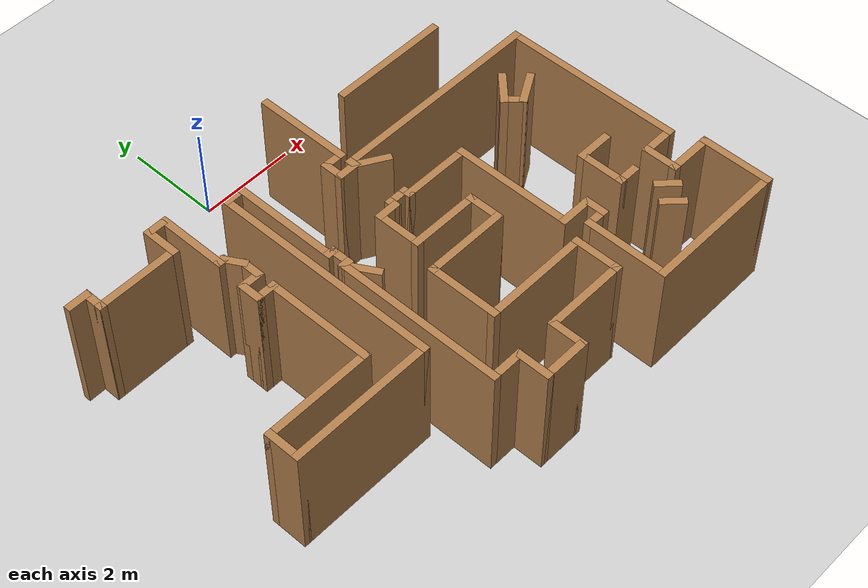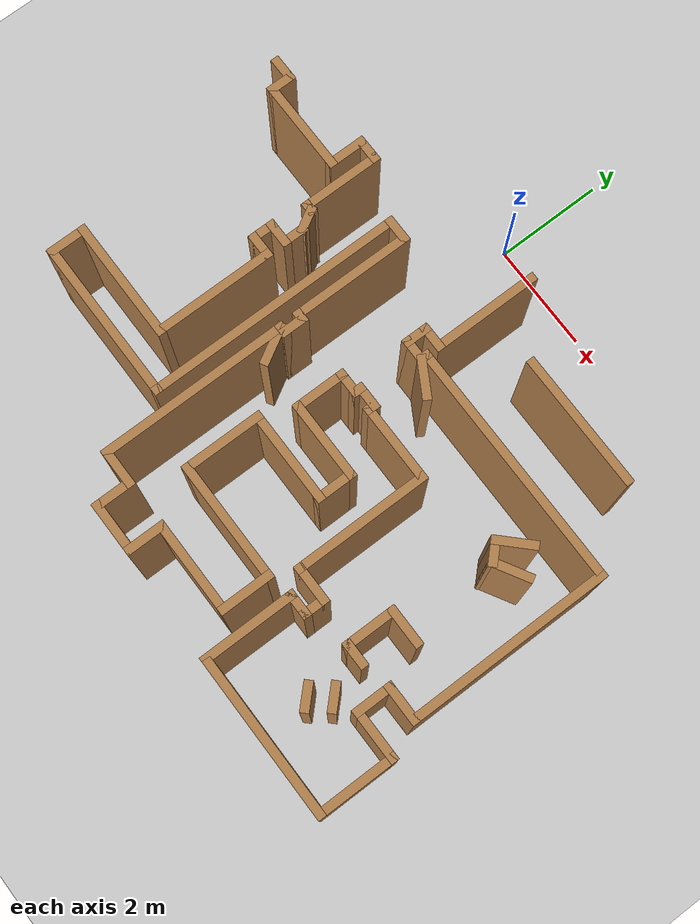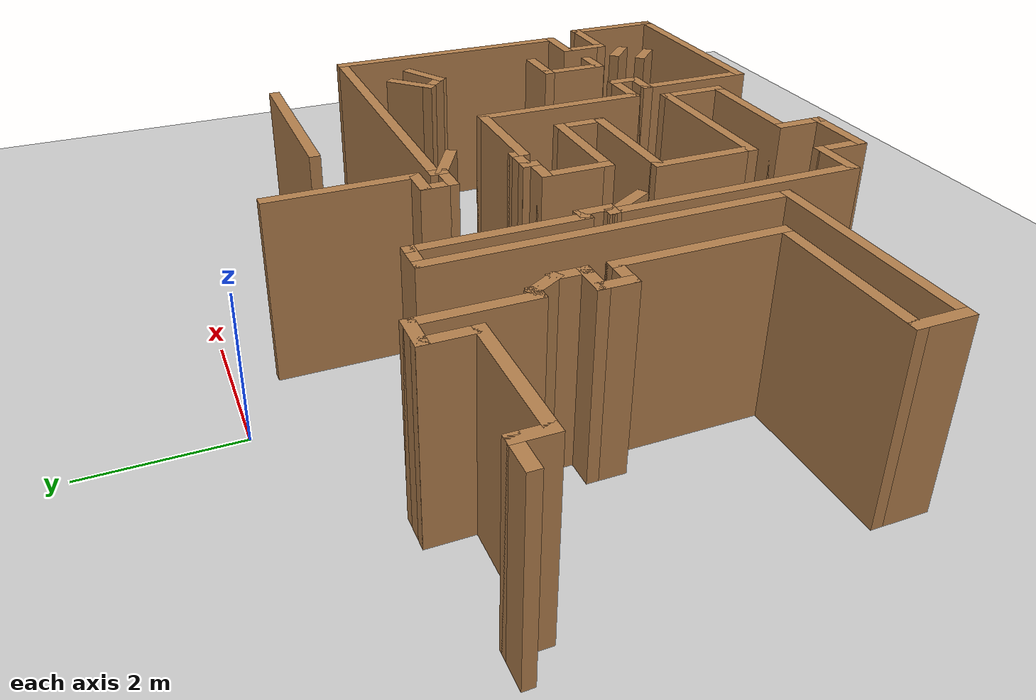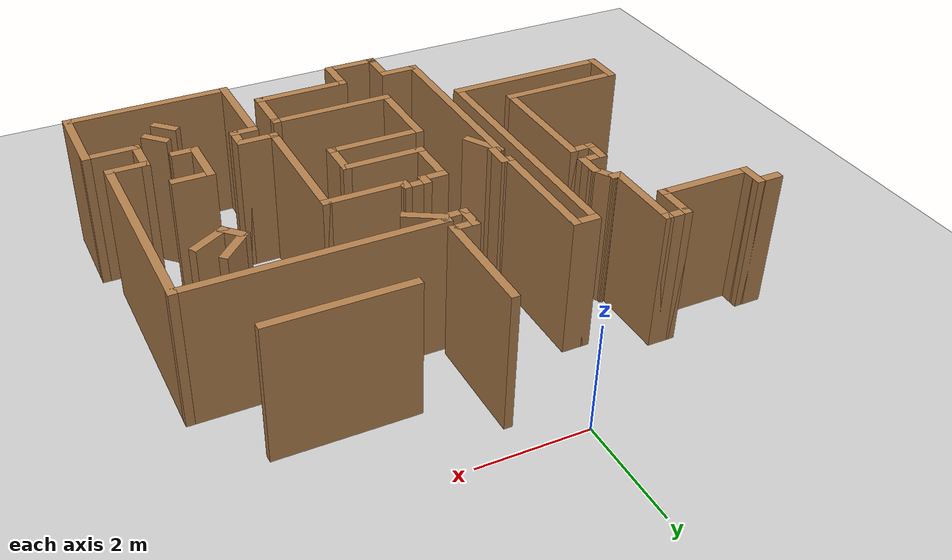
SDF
<sdf version="1.6">
 <world name="default">
  <model name="ground_plane">
   <static>1</static>
   <link name="link">
    <collision name="collision">
     <geometry><plane><normal>0 0 1</normal><size>100 100</size></plane></geometry>
     <surface>
      <contact><collide_bitmask>65535</collide_bitmask></contact>
      <friction><ode><mu>100</mu><mu2>50</mu2></ode></friction>
     </surface>
    </collision>
    <visual name="visual">
     <cast_shadows>0</cast_shadows>
     <geometry><plane><normal>0 0 1</normal><size>100 100</size></plane></geometry>
     <material>
      <script><uri>file://media/materials/scripts/gazebo.material</uri><name>Gazebo/Grey</name></script>
     </material>
    </visual>
   </link>
  </model>
  <model name="map_47">
   <pose>0.712 -1.49736 0 0 -0 0</pose>
   <link name="Wall_102">
    <collision name="Wall_102_Collision">
     <geometry><box><size>4.5 0.15 2.5</size></box></geometry>
     <pose>0 0 1.25 0 -0 0</pose>
    </collision>
    <visual name="Wall_102_Visual">
     <pose>0 0 1.25 0 -0 0</pose>
     <geometry><box><size>4.5 0.15 2.5</size></box></geometry>
     <material>
      <script><uri>file://media/materials/scripts/gazebo.material</uri><name>Gazebo/Wood</name></script>
      <ambient>1 1 1 1</ambient>
     </material>
     <meta><layer>0</layer></meta>
    </visual>
    <pose>2.5875 -1.23787 0 0 -0 3.14159</pose>
   </link>
   <link name="Wall_105">
    <collision name="Wall_105_Collision">
     <geometry><box><size>0.25 0.15 2.5</size></box></geometry>
     <pose>0 0 1.25 0 -0 0</pose>
    </collision>
    <visual name="Wall_105_Visual">
     <pose>0 0 1.25 0 -0 0</pose>
     <geometry><box><size>0.25 0.15 2.5</size></box></geometry>
     <material>
      <script><uri>file://media/materials/scripts/gazebo.material</uri><name>Gazebo/Wood</name></script>
      <ambient>1 1 1 1</ambient>
     </material>
     <meta><layer>0</layer></meta>
    </visual>
    <pose>0.4125 -1.28787 0 0 -0 -1.5708</pose>
   </link>
   <link name="Wall_106">
    <collision name="Wall_106_Collision">
     <geometry><box><size>0.5 0.15 2.5</size></box></geometry>
     <pose>0 0 1.25 0 -0 0</pose>
    </collision>
    <visual name="Wall_106_Visual">
     <pose>0 0 1.25 0 -0 0</pose>
     <geometry><box><size>0.5 0.15 2.5</size></box></geometry>
     <material>
      <script><uri>file://media/materials/scripts/gazebo.material</uri><name>Gazebo/Wood</name></script>
      <ambient>1 1 1 1</ambient>
     </material>
     <meta><layer>0</layer></meta>
    </visual>
    <pose>0.2375 -1.33787 0 0 -0 3.14159</pose>
   </link>
   <link name="Wall_107">
    <collision name="Wall_107_Collision">
     <geometry><box><size>0.5 0.15 2.5</size></box></geometry>
     <pose>0 0 1.25 0 -0 0</pose>
    </collision>
    <visual name="Wall_107_Visual">
     <pose>0 0 1.25 0 -0 0</pose>
     <geometry><box><size>0.5 0.15 2.5</size></box></geometry>
     <material>
      <script><uri>file://media/materials/scripts/gazebo.material</uri><name>Gazebo/Wood</name></script>
      <ambient>1 1 1 1</ambient>
     </material>
     <meta><layer>0</layer></meta>
    </visual>
    <pose>0.0625 -1.16287 0 0 -0 1.5708</pose>
   </link>
   <link name="Wall_108">
    <collision name="Wall_108_Collision">
     <geometry><box><size>0.5 0.15 2.5</size></box></geometry>
     <pose>0 0 1.25 0 -0 0</pose>
    </collision>
    <visual name="Wall_108_Visual">
     <pose>0 0 1.25 0 -0 0</pose>
     <geometry><box><size>0.5 0.15 2.5</size></box></geometry>
     <material>
      <script><uri>file://media/materials/scripts/gazebo.material</uri><name>Gazebo/Wood</name></script>
      <ambient>1 1 1 1</ambient>
     </material>
     <meta><layer>0</layer></meta>
    </visual>
    <pose>0.2375 -0.987868 0 0 -0 0</pose>
   </link>
   <link name="Wall_109">
    <collision name="Wall_109_Collision">
     <geometry><box><size>2 0.15 2.5</size></box></geometry>
     <pose>0 0 1.25 0 -0 0</pose>
    </collision>
    <visual name="Wall_109_Visual">
     <pose>0 0 1.25 0 -0 0</pose>
     <geometry><box><size>2 0.15 2.5</size></box></geometry>
     <material>
      <script><uri>file://media/materials/scripts/gazebo.material</uri><name>Gazebo/Wood</name></script>
      <ambient>1 1 1 1</ambient>
     </material>
     <meta><layer>0</layer></meta>
    </visual>
    <pose>0.4125 -0.062868 0 0 -0 1.5708</pose>
   </link>
   <link name="Wall_112">
    <collision name="Wall_112_Collision">
     <geometry><box><size>2.5 0.15 2.5</size></box></geometry>
     <pose>0 0 1.25 0 -0 0</pose>
    </collision>
    <visual name="Wall_112_Visual">
     <pose>0 0 1.25 0 -0 0</pose>
     <geometry><box><size>2.5 0.15 2.5</size></box></geometry>
     <material>
      <script><uri>file://media/materials/scripts/gazebo.material</uri><name>Gazebo/Wood</name></script>
      <ambient>1 1 1 1</ambient>
     </material>
     <meta><layer>0</layer></meta>
    </visual>
    <pose>2.6875 0.012132 0 0 -0 0</pose>
   </link>
   <link name="Wall_169">
    <collision name="Wall_169_Collision">
     <geometry><box><size>0.75 0.15 2.5</size></box></geometry>
     <pose>0 0 1.25 0 -0 0</pose>
    </collision>
    <visual name="Wall_169_Visual">
     <pose>0 0 1.25 0 -0 0</pose>
     <geometry><box><size>0.75 0.15 2.5</size></box></geometry>
     <material>
      <script><uri>file://media/materials/scripts/gazebo.material</uri><name>Gazebo/Wood</name></script>
      <ambient>1 1 1 1</ambient>
     </material>
     <meta><layer>0</layer></meta>
    </visual>
    <pose>0.672308 -1.48787 0 0 -0 -0.523599</pose>
   </link>
   <link name="Wall_171">
    <collision name="Wall_171_Collision">
     <geometry><box><size>0.75 0.15 2.5</size></box></geometry>
     <pose>0 0 1.25 0 -0 0</pose>
    </collision>
    <visual name="Wall_171_Visual">
     <pose>0 0 1.25 0 -0 0</pose>
     <geometry><box><size>0.75 0.15 2.5</size></box></geometry>
     <material>
      <script><uri>file://media/materials/scripts/gazebo.material</uri><name>Gazebo/Wood</name></script>
      <ambient>1 1 1 1</ambient>
     </material>
     <meta><layer>0</layer></meta>
    </visual>
    <pose>3.57602 -1.97786 0 0 -0 -2.35619</pose>
   </link>
   <link name="Wall_172">
    <collision name="Wall_172_Collision">
     <geometry><box><size>0.5 0.15 2.5</size></box></geometry>
     <pose>0 0 1.25 0 -0 0</pose>
    </collision>
    <visual name="Wall_172_Visual">
     <pose>0 0 1.25 0 -0 0</pose>
     <geometry><box><size>0.5 0.15 2.5</size></box></geometry>
     <material>
      <script><uri>file://media/materials/scripts/gazebo.material</uri><name>Gazebo/Wood</name></script>
      <ambient>1 1 1 1</ambient>
     </material>
     <meta><layer>0</layer></meta>
    </visual>
    <pose>3.48763 -2.31373 0 0 -0 -0.785398</pose>
   </link>
   <link name="Wall_173">
    <collision name="Wall_173_Collision">
     <geometry><box><size>0.75 0.15 2.5</size></box></geometry>
     <pose>0 0 1.25 0 -0 0</pose>
    </collision>
    <visual name="Wall_173_Visual">
     <pose>0 0 1.25 0 -0 0</pose>
     <geometry><box><size>0.75 0.15 2.5</size></box></geometry>
     <material>
      <script><uri>file://media/materials/scripts/gazebo.material</uri><name>Gazebo/Wood</name></script>
      <ambient>1 1 1 1</ambient>
     </material>
     <meta><layer>0</layer></meta>
    </visual>
    <pose>3.87118 -2.28748 0 0 -0 0.523599</pose>
   </link>
   <link name="Wall_175">
    <collision name="Wall_175_Collision">
     <geometry><box><size>0.75 0.15 2.5</size></box></geometry>
     <pose>0 0 1.25 0 -0 0</pose>
    </collision>
    <visual name="Wall_175_Visual">
     <pose>0 0 1.25 0 -0 0</pose>
     <geometry><box><size>0.75 0.15 2.5</size></box></geometry>
     <material>
      <script><uri>file://media/materials/scripts/gazebo.material</uri><name>Gazebo/Wood</name></script>
      <ambient>1 1 1 1</ambient>
     </material>
     <meta><layer>0</layer></meta>
    </visual>
    <pose>3.58067 -4.10192 0 0 -0 3.14159</pose>
   </link>
   <link name="Wall_176">
    <collision name="Wall_176_Collision">
     <geometry><box><size>1 0.15 2.5</size></box></geometry>
     <pose>0 0 1.25 0 -0 0</pose>
    </collision>
    <visual name="Wall_176_Visual">
     <pose>0 0 1.25 0 -0 0</pose>
     <geometry><box><size>1 0.15 2.5</size></box></geometry>
     <material>
      <script><uri>file://media/materials/scripts/gazebo.material</uri><name>Gazebo/Wood</name></script>
      <ambient>1 1 1 1</ambient>
     </material>
     <meta><layer>0</layer></meta>
    </visual>
    <pose>3.28067 -4.52692 0 0 -0 -1.5708</pose>
   </link>
   <link name="Wall_179">
    <collision name="Wall_179_Collision">
     <geometry><box><size>0.5 0.15 2.5</size></box></geometry>
     <pose>0 0 1.25 0 -0 0</pose>
    </collision>
    <visual name="Wall_179_Visual">
     <pose>0 0 1.25 0 -0 0</pose>
     <geometry><box><size>0.5 0.15 2.5</size></box></geometry>
     <material>
      <script><uri>file://media/materials/scripts/gazebo.material</uri><name>Gazebo/Wood</name></script>
      <ambient>1 1 1 1</ambient>
     </material>
     <meta><layer>0</layer></meta>
    </visual>
    <pose>3.45567 -4.95192 0 0 -0 0</pose>
   </link>
   <link name="Wall_181">
    <collision name="Wall_181_Collision">
     <geometry><box><size>0.5 0.15 2.5</size></box></geometry>
     <pose>0 0 1.25 0 -0 0</pose>
    </collision>
    <visual name="Wall_181_Visual">
     <pose>0 0 1.25 0 -0 0</pose>
     <geometry><box><size>0.5 0.15 2.5</size></box></geometry>
     <material>
      <script><uri>file://media/materials/scripts/gazebo.material</uri><name>Gazebo/Wood</name></script>
      <ambient>1 1 1 1</ambient>
     </material>
     <meta><layer>0</layer></meta>
    </visual>
    <pose>3.77311 -5.59037 0 0 -0 -0.785398</pose>
   </link>
   <link name="Wall_183">
    <collision name="Wall_183_Collision">
     <geometry><box><size>0.5 0.15 2.5</size></box></geometry>
     <pose>0 0 1.25 0 -0 0</pose>
    </collision>
    <visual name="Wall_183_Visual">
     <pose>0 0 1.25 0 -0 0</pose>
     <geometry><box><size>0.5 0.15 2.5</size></box></geometry>
     <material>
      <script><uri>file://media/materials/scripts/gazebo.material</uri><name>Gazebo/Wood</name></script>
      <ambient>1 1 1 1</ambient>
     </material>
     <meta><layer>0</layer></meta>
    </visual>
    <pose>3.51867 -5.9142 0 0 -0 -0.785398</pose>
   </link>
   <link name="Wall_185">
    <collision name="Wall_185_Collision">
     <geometry><box><size>0.75 0.15 2.5</size></box></geometry>
     <pose>0 0 1.25 0 -0 0</pose>
    </collision>
    <visual name="Wall_185_Visual">
     <pose>0 0 1.25 0 -0 0</pose>
     <geometry><box><size>0.75 0.15 2.5</size></box></geometry>
     <material>
      <script><uri>file://media/materials/scripts/gazebo.material</uri><name>Gazebo/Wood</name></script>
      <ambient>1 1 1 1</ambient>
     </material>
     <meta><layer>0</layer></meta>
    </visual>
    <pose>-1.1875 -3.04768 0 0 -0 -1.0472</pose>
   </link>
   <link name="Wall_29">
    <collision name="Wall_29_Collision">
     <geometry><box><size>0.5 0.15 2.5</size></box></geometry>
     <pose>0 0 1.25 0 -0 0</pose>
    </collision>
    <visual name="Wall_29_Visual">
     <pose>0 0 1.25 0 -0 0</pose>
     <geometry><box><size>0.5 0.15 2.5</size></box></geometry>
     <material>
      <script><uri>file://media/materials/scripts/gazebo.material</uri><name>Gazebo/Wood</name></script>
      <ambient>1 1 1 1</ambient>
     </material>
     <meta><layer>0</layer></meta>
    </visual>
    <pose>-4.8375 -0.134759 0 0 -0 0</pose>
   </link>
   <link name="Wall_30">
    <collision name="Wall_30_Collision">
     <geometry><box><size>0.5 0.15 2.5</size></box></geometry>
     <pose>0 0 1.25 0 -0 0</pose>
    </collision>
    <visual name="Wall_30_Visual">
     <pose>0 0 1.25 0 -0 0</pose>
     <geometry><box><size>0.5 0.15 2.5</size></box></geometry>
     <material>
      <script><uri>file://media/materials/scripts/gazebo.material</uri><name>Gazebo/Wood</name></script>
      <ambient>1 1 1 1</ambient>
     </material>
     <meta><layer>0</layer></meta>
    </visual>
    <pose>-4.6625 -0.309759 0 0 -0 -1.5708</pose>
   </link>
   <link name="Wall_31">
    <collision name="Wall_31_Collision">
     <geometry><box><size>1.75 0.15 2.5</size></box></geometry>
     <pose>0 0 1.25 0 -0 0</pose>
    </collision>
    <visual name="Wall_31_Visual">
     <pose>0 0 1.25 0 -0 0</pose>
     <geometry><box><size>1.75 0.15 2.5</size></box></geometry>
     <material>
      <script><uri>file://media/materials/scripts/gazebo.material</uri><name>Gazebo/Wood</name></script>
      <ambient>1 1 1 1</ambient>
     </material>
     <meta><layer>0</layer></meta>
    </visual>
    <pose>-3.8625 -0.484759 0 0 -0 0</pose>
   </link>
   <link name="Wall_32">
    <collision name="Wall_32_Collision">
     <geometry><box><size>0.75 0.15 2.5</size></box></geometry>
     <pose>0 0 1.25 0 -0 0</pose>
    </collision>
    <visual name="Wall_32_Visual">
     <pose>0 0 1.25 0 -0 0</pose>
     <geometry><box><size>0.75 0.15 2.5</size></box></geometry>
     <material>
      <script><uri>file://media/materials/scripts/gazebo.material</uri><name>Gazebo/Wood</name></script>
      <ambient>1 1 1 1</ambient>
     </material>
     <meta><layer>0</layer></meta>
    </visual>
    <pose>-3.0625 -0.184759 0 0 -0 1.5708</pose>
   </link>
   <link name="Wall_33">
    <collision name="Wall_33_Collision">
     <geometry><box><size>0.5 0.15 2.5</size></box></geometry>
     <pose>0 0 1.25 0 -0 0</pose>
    </collision>
    <visual name="Wall_33_Visual">
     <pose>0 0 1.25 0 -0 0</pose>
     <geometry><box><size>0.5 0.15 2.5</size></box></geometry>
     <material>
      <script><uri>file://media/materials/scripts/gazebo.material</uri><name>Gazebo/Wood</name></script>
      <ambient>1 1 1 1</ambient>
     </material>
     <meta><layer>0</layer></meta>
    </visual>
    <pose>-2.8875 0.115241 0 0 -0 0</pose>
   </link>
   <link name="Wall_34">
    <collision name="Wall_34_Collision">
     <geometry><box><size>1.5 0.15 2.5</size></box></geometry>
     <pose>0 0 1.25 0 -0 0</pose>
    </collision>
    <visual name="Wall_34_Visual">
     <pose>0 0 1.25 0 -0 0</pose>
     <geometry><box><size>1.5 0.15 2.5</size></box></geometry>
     <material>
      <script><uri>file://media/materials/scripts/gazebo.material</uri><name>Gazebo/Wood</name></script>
      <ambient>1 1 1 1</ambient>
     </material>
     <meta><layer>0</layer></meta>
    </visual>
    <pose>-2.7125 -0.559759 0 0 -0 -1.5708</pose>
   </link>
   <link name="Wall_35">
    <collision name="Wall_35_Collision">
     <geometry><box><size>0.25 0.15 2.5</size></box></geometry>
     <pose>0 0 1.25 0 -0 0</pose>
    </collision>
    <visual name="Wall_35_Visual">
     <pose>0 0 1.25 0 -0 0</pose>
     <geometry><box><size>0.25 0.15 2.5</size></box></geometry>
     <material>
      <script><uri>file://media/materials/scripts/gazebo.material</uri><name>Gazebo/Wood</name></script>
      <ambient>1 1 1 1</ambient>
     </material>
     <meta><layer>0</layer></meta>
    </visual>
    <pose>-2.6625 -1.23476 0 0 -0 0</pose>
   </link>
   <link name="Wall_36">
    <collision name="Wall_36_Collision">
     <geometry><box><size>0.5 0.15 2.5</size></box></geometry>
     <pose>0 0 1.25 0 -0 0</pose>
    </collision>
    <visual name="Wall_36_Visual">
     <pose>0 0 1.25 0 -0 0</pose>
     <geometry><box><size>0.5 0.15 2.5</size></box></geometry>
     <material>
      <script><uri>file://media/materials/scripts/gazebo.material</uri><name>Gazebo/Wood</name></script>
      <ambient>1 1 1 1</ambient>
     </material>
     <meta><layer>0</layer></meta>
    </visual>
    <pose>-2.525 -1.38631 0 0 -0 -1.0472</pose>
   </link>
   <link name="Wall_37">
    <collision name="Wall_37_Collision">
     <geometry><box><size>0.5 0.15 2.5</size></box></geometry>
     <pose>0 0 1.25 0 -0 0</pose>
    </collision>
    <visual name="Wall_37_Visual">
     <pose>0 0 1.25 0 -0 0</pose>
     <geometry><box><size>0.5 0.15 2.5</size></box></geometry>
     <material>
      <script><uri>file://media/materials/scripts/gazebo.material</uri><name>Gazebo/Wood</name></script>
      <ambient>1 1 1 1</ambient>
     </material>
     <meta><layer>0</layer></meta>
    </visual>
    <pose>-2.4375 -1.71287 0 0 -0 -1.5708</pose>
   </link>
   <link name="Wall_38">
    <collision name="Wall_38_Collision">
     <geometry><box><size>0.5 0.15 2.5</size></box></geometry>
     <pose>0 0 1.25 0 -0 0</pose>
    </collision>
    <visual name="Wall_38_Visual">
     <pose>0 0 1.25 0 -0 0</pose>
     <geometry><box><size>0.5 0.15 2.5</size></box></geometry>
     <material>
      <script><uri>file://media/materials/scripts/gazebo.material</uri><name>Gazebo/Wood</name></script>
      <ambient>1 1 1 1</ambient>
     </material>
     <meta><layer>0</layer></meta>
    </visual>
    <pose>-2.6125 -1.88787 0 0 -0 3.14159</pose>
   </link>
   <link name="Wall_39">
    <collision name="Wall_39_Collision">
     <geometry><box><size>0.5 0.15 2.5</size></box></geometry>
     <pose>0 0 1.25 0 -0 0</pose>
    </collision>
    <visual name="Wall_39_Visual">
     <pose>0 0 1.25 0 -0 0</pose>
     <geometry><box><size>0.5 0.15 2.5</size></box></geometry>
     <material>
      <script><uri>file://media/materials/scripts/gazebo.material</uri><name>Gazebo/Wood</name></script>
      <ambient>1 1 1 1</ambient>
     </material>
     <meta><layer>0</layer></meta>
    </visual>
    <pose>-2.7875 -2.06287 0 0 -0 -1.5708</pose>
   </link>
   <link name="Wall_42">
    <collision name="Wall_42_Collision">
     <geometry><box><size>0.5 0.15 2.5</size></box></geometry>
     <pose>0 0 1.25 0 -0 0</pose>
    </collision>
    <visual name="Wall_42_Visual">
     <pose>0 0 1.25 0 -0 0</pose>
     <geometry><box><size>0.5 0.15 2.5</size></box></geometry>
     <material>
      <script><uri>file://media/materials/scripts/gazebo.material</uri><name>Gazebo/Wood</name></script>
      <ambient>1 1 1 1</ambient>
     </material>
     <meta><layer>0</layer></meta>
    </visual>
    <pose>-2.6125 -2.23787 0 0 -0 0</pose>
   </link>
   <link name="Wall_43">
    <collision name="Wall_43_Collision">
     <geometry><box><size>2.25 0.15 2.5</size></box></geometry>
     <pose>0 0 1.25 0 -0 0</pose>
    </collision>
    <visual name="Wall_43_Visual">
     <pose>0 0 1.25 0 -0 0</pose>
     <geometry><box><size>2.25 0.15 2.5</size></box></geometry>
     <material>
      <script><uri>file://media/materials/scripts/gazebo.material</uri><name>Gazebo/Wood</name></script>
      <ambient>1 1 1 1</ambient>
     </material>
     <meta><layer>0</layer></meta>
    </visual>
    <pose>-2.4375 -3.28787 0 0 -0 -1.5708</pose>
   </link>
   <link name="Wall_44">
    <collision name="Wall_44_Collision">
     <geometry><box><size>2.25 0.15 2.5</size></box></geometry>
     <pose>0 0 1.25 0 -0 0</pose>
    </collision>
    <visual name="Wall_44_Visual">
     <pose>0 0 1.25 0 -0 0</pose>
     <geometry><box><size>2.25 0.15 2.5</size></box></geometry>
     <material>
      <script><uri>file://media/materials/scripts/gazebo.material</uri><name>Gazebo/Wood</name></script>
      <ambient>1 1 1 1</ambient>
     </material>
     <meta><layer>0</layer></meta>
    </visual>
    <pose>-3.4875 -4.33787 0 0 -0 3.14159</pose>
   </link>
   <link name="Wall_45">
    <collision name="Wall_45_Collision">
     <geometry><box><size>0.75 0.15 2.5</size></box></geometry>
     <pose>0 0 1.25 0 -0 0</pose>
    </collision>
    <visual name="Wall_45_Visual">
     <pose>0 0 1.25 0 -0 0</pose>
     <geometry><box><size>0.75 0.15 2.5</size></box></geometry>
     <material>
      <script><uri>file://media/materials/scripts/gazebo.material</uri><name>Gazebo/Wood</name></script>
      <ambient>1 1 1 1</ambient>
     </material>
     <meta><layer>0</layer></meta>
    </visual>
    <pose>-4.5375 -4.63787 0 0 -0 -1.5708</pose>
   </link>
   <link name="Wall_46">
    <collision name="Wall_46_Collision">
     <geometry><box><size>3 0.15 2.5</size></box></geometry>
     <pose>0 0 1.25 0 -0 0</pose>
    </collision>
    <visual name="Wall_46_Visual">
     <pose>0 0 1.25 0 -0 0</pose>
     <geometry><box><size>3 0.15 2.5</size></box></geometry>
     <material>
      <script><uri>file://media/materials/scripts/gazebo.material</uri><name>Gazebo/Wood</name></script>
      <ambient>1 1 1 1</ambient>
     </material>
     <meta><layer>0</layer></meta>
    </visual>
    <pose>-3.1125 -4.93787 0 0 -0 0</pose>
   </link>
   <link name="Wall_47">
    <collision name="Wall_47_Collision">
     <geometry><box><size>4.75 0.15 2.5</size></box></geometry>
     <pose>0 0 1.25 0 -0 0</pose>
    </collision>
    <visual name="Wall_47_Visual">
     <pose>0 0 1.25 0 -0 0</pose>
     <geometry><box><size>4.75 0.15 2.5</size></box></geometry>
     <material>
      <script><uri>file://media/materials/scripts/gazebo.material</uri><name>Gazebo/Wood</name></script>
      <ambient>1 1 1 1</ambient>
     </material>
     <meta><layer>0</layer></meta>
    </visual>
    <pose>-1.6875 -2.63787 0 0 -0 1.5708</pose>
   </link>
   <link name="Wall_48">
    <collision name="Wall_48_Collision">
     <geometry><box><size>0.5 0.15 2.5</size></box></geometry>
     <pose>0 0 1.25 0 -0 0</pose>
    </collision>
    <visual name="Wall_48_Visual">
     <pose>0 0 1.25 0 -0 0</pose>
     <geometry><box><size>0.5 0.15 2.5</size></box></geometry>
     <material>
      <script><uri>file://media/materials/scripts/gazebo.material</uri><name>Gazebo/Wood</name></script>
      <ambient>1 1 1 1</ambient>
     </material>
     <meta><layer>0</layer></meta>
    </visual>
    <pose>-1.5125 -0.337868 0 0 -0 0</pose>
   </link>
   <link name="Wall_49">
    <collision name="Wall_49_Collision">
     <geometry><box><size>2.25 0.15 2.5</size></box></geometry>
     <pose>0 0 1.25 0 -0 0</pose>
    </collision>
    <visual name="Wall_49_Visual">
     <pose>0 0 1.25 0 -0 0</pose>
     <geometry><box><size>2.25 0.15 2.5</size></box></geometry>
     <material>
      <script><uri>file://media/materials/scripts/gazebo.material</uri><name>Gazebo/Wood</name></script>
      <ambient>1 1 1 1</ambient>
     </material>
     <meta><layer>0</layer></meta>
    </visual>
    <pose>-1.3375 -1.38787 0 0 -0 -1.5708</pose>
   </link>
   <link name="Wall_50">
    <collision name="Wall_50_Collision">
     <geometry><box><size>0.25 0.15 2.5</size></box></geometry>
     <pose>0 0 1.25 0 -0 0</pose>
    </collision>
    <visual name="Wall_50_Visual">
     <pose>0 0 1.25 0 -0 0</pose>
     <geometry><box><size>0.25 0.15 2.5</size></box></geometry>
     <material>
      <script><uri>file://media/materials/scripts/gazebo.material</uri><name>Gazebo/Wood</name></script>
      <ambient>1 1 1 1</ambient>
     </material>
     <meta><layer>0</layer></meta>
    </visual>
    <pose>-1.2875 -2.43787 0 0 -0 0</pose>
   </link>
   <link name="Wall_51">
    <collision name="Wall_51_Collision">
     <geometry><box><size>0.5 0.15 2.5</size></box></geometry>
     <pose>0 0 1.25 0 -0 0</pose>
    </collision>
    <visual name="Wall_51_Visual">
     <pose>0 0 1.25 0 -0 0</pose>
     <geometry><box><size>0.5 0.15 2.5</size></box></geometry>
     <material>
      <script><uri>file://media/materials/scripts/gazebo.material</uri><name>Gazebo/Wood</name></script>
      <ambient>1 1 1 1</ambient>
     </material>
     <meta><layer>0</layer></meta>
    </visual>
    <pose>-1.2375 -2.61287 0 0 -0 -1.5708</pose>
   </link>
   <link name="Wall_52">
    <collision name="Wall_52_Collision">
     <geometry><box><size>0.25 0.15 2.5</size></box></geometry>
     <pose>0 0 1.25 0 -0 0</pose>
    </collision>
    <visual name="Wall_52_Visual">
     <pose>0 0 1.25 0 -0 0</pose>
     <geometry><box><size>0.25 0.15 2.5</size></box></geometry>
     <material>
      <script><uri>file://media/materials/scripts/gazebo.material</uri><name>Gazebo/Wood</name></script>
      <ambient>1 1 1 1</ambient>
     </material>
     <meta><layer>0</layer></meta>
    </visual>
    <pose>-1.2875 -2.78787 0 0 -0 3.14159</pose>
   </link>
   <link name="Wall_53">
    <collision name="Wall_53_Collision">
     <geometry><box><size>3.5 0.15 2.5</size></box></geometry>
     <pose>0 0 1.25 0 -0 0</pose>
    </collision>
    <visual name="Wall_53_Visual">
     <pose>0 0 1.25 0 -0 0</pose>
     <geometry><box><size>3.5 0.15 2.5</size></box></geometry>
     <material>
      <script><uri>file://media/materials/scripts/gazebo.material</uri><name>Gazebo/Wood</name></script>
      <ambient>1 1 1 1</ambient>
     </material>
     <meta><layer>0</layer></meta>
    </visual>
    <pose>-1.3375 -4.46287 0 0 -0 -1.5708</pose>
   </link>
   <link name="Wall_54">
    <collision name="Wall_54_Collision">
     <geometry><box><size>0.75 0.15 2.5</size></box></geometry>
     <pose>0 0 1.25 0 -0 0</pose>
    </collision>
    <visual name="Wall_54_Visual">
     <pose>0 0 1.25 0 -0 0</pose>
     <geometry><box><size>0.75 0.15 2.5</size></box></geometry>
     <material>
      <script><uri>file://media/materials/scripts/gazebo.material</uri><name>Gazebo/Wood</name></script>
      <ambient>1 1 1 1</ambient>
     </material>
     <meta><layer>0</layer></meta>
    </visual>
    <pose>-1.0375 -6.13787 0 0 -0 0</pose>
   </link>
   <link name="Wall_59">
    <collision name="Wall_59_Collision">
     <geometry><box><size>0.75 0.15 2.5</size></box></geometry>
     <pose>0 0 1.25 0 -0 0</pose>
    </collision>
    <visual name="Wall_59_Visual">
     <pose>0 0 1.25 0 -0 0</pose>
     <geometry><box><size>0.75 0.15 2.5</size></box></geometry>
     <material>
      <script><uri>file://media/materials/scripts/gazebo.material</uri><name>Gazebo/Wood</name></script>
      <ambient>1 1 1 1</ambient>
     </material>
     <meta><layer>0</layer></meta>
    </visual>
    <pose>-0.7375 -6.43787 0 0 -0 -1.5708</pose>
   </link>
   <link name="Wall_60">
    <collision name="Wall_60_Collision">
     <geometry><box><size>1 0.15 2.5</size></box></geometry>
     <pose>0 0 1.25 0 -0 0</pose>
    </collision>
    <visual name="Wall_60_Visual">
     <pose>0 0 1.25 0 -0 0</pose>
     <geometry><box><size>1 0.15 2.5</size></box></geometry>
     <material>
      <script><uri>file://media/materials/scripts/gazebo.material</uri><name>Gazebo/Wood</name></script>
      <ambient>1 1 1 1</ambient>
     </material>
     <meta><layer>0</layer></meta>
    </visual>
    <pose>-0.3125 -6.73787 0 0 -0 0</pose>
   </link>
   <link name="Wall_61">
    <collision name="Wall_61_Collision">
     <geometry><box><size>0.75 0.15 2.5</size></box></geometry>
     <pose>0 0 1.25 0 -0 0</pose>
    </collision>
    <visual name="Wall_61_Visual">
     <pose>0 0 1.25 0 -0 0</pose>
     <geometry><box><size>0.75 0.15 2.5</size></box></geometry>
     <material>
      <script><uri>file://media/materials/scripts/gazebo.material</uri><name>Gazebo/Wood</name></script>
      <ambient>1 1 1 1</ambient>
     </material>
     <meta><layer>0</layer></meta>
    </visual>
    <pose>0.1125 -6.43787 0 0 -0 1.5708</pose>
   </link>
   <link name="Wall_62">
    <collision name="Wall_62_Collision">
     <geometry><box><size>1.75 0.15 2.5</size></box></geometry>
     <pose>0 0 1.25 0 -0 0</pose>
    </collision>
    <visual name="Wall_62_Visual">
     <pose>0 0 1.25 0 -0 0</pose>
     <geometry><box><size>1.75 0.15 2.5</size></box></geometry>
     <material>
      <script><uri>file://media/materials/scripts/gazebo.material</uri><name>Gazebo/Wood</name></script>
      <ambient>1 1 1 1</ambient>
     </material>
     <meta><layer>0</layer></meta>
    </visual>
    <pose>0.9125 -6.13787 0 0 -0 0</pose>
   </link>
   <link name="Wall_63">
    <collision name="Wall_63_Collision">
     <geometry><box><size>1 0.15 2.5</size></box></geometry>
     <pose>0 0 1.25 0 -0 0</pose>
    </collision>
    <visual name="Wall_63_Visual">
     <pose>0 0 1.25 0 -0 0</pose>
     <geometry><box><size>1 0.15 2.5</size></box></geometry>
     <material>
      <script><uri>file://media/materials/scripts/gazebo.material</uri><name>Gazebo/Wood</name></script>
      <ambient>1 1 1 1</ambient>
     </material>
     <meta><layer>0</layer></meta>
    </visual>
    <pose>1.7125 -5.71287 0 0 -0 1.5708</pose>
   </link>
   <link name="Wall_64">
    <collision name="Wall_64_Collision">
     <geometry><box><size>2.25 0.15 2.5</size></box></geometry>
     <pose>0 0 1.25 0 -0 0</pose>
    </collision>
    <visual name="Wall_64_Visual">
     <pose>0 0 1.25 0 -0 0</pose>
     <geometry><box><size>2.25 0.15 2.5</size></box></geometry>
     <material>
      <script><uri>file://media/materials/scripts/gazebo.material</uri><name>Gazebo/Wood</name></script>
      <ambient>1 1 1 1</ambient>
     </material>
     <meta><layer>0</layer></meta>
    </visual>
    <pose>0.6625 -5.28787 0 0 -0 3.14159</pose>
   </link>
   <link name="Wall_65">
    <collision name="Wall_65_Collision">
     <geometry><box><size>1.5 0.15 2.5</size></box></geometry>
     <pose>0 0 1.25 0 -0 0</pose>
    </collision>
    <visual name="Wall_65_Visual">
     <pose>0 0 1.25 0 -0 0</pose>
     <geometry><box><size>1.5 0.15 2.5</size></box></geometry>
     <material>
      <script><uri>file://media/materials/scripts/gazebo.material</uri><name>Gazebo/Wood</name></script>
      <ambient>1 1 1 1</ambient>
     </material>
     <meta><layer>0</layer></meta>
    </visual>
    <pose>-0.3875 -4.61287 0 0 -0 1.5708</pose>
   </link>
   <link name="Wall_68">
    <collision name="Wall_68_Collision">
     <geometry><box><size>1.75 0.15 2.5</size></box></geometry>
     <pose>0 0 1.25 0 -0 0</pose>
    </collision>
    <visual name="Wall_68_Visual">
     <pose>0 0 1.25 0 -0 0</pose>
     <geometry><box><size>1.75 0.15 2.5</size></box></geometry>
     <material>
      <script><uri>file://media/materials/scripts/gazebo.material</uri><name>Gazebo/Wood</name></script>
      <ambient>1 1 1 1</ambient>
     </material>
     <meta><layer>0</layer></meta>
    </visual>
    <pose>0.4125 -3.93787 0 0 -0 0</pose>
   </link>
   <link name="Wall_69">
    <collision name="Wall_69_Collision">
     <geometry><box><size>0.75 0.15 2.5</size></box></geometry>
     <pose>0 0 1.25 0 -0 0</pose>
    </collision>
    <visual name="Wall_69_Visual">
     <pose>0 0 1.25 0 -0 0</pose>
     <geometry><box><size>0.75 0.15 2.5</size></box></geometry>
     <material>
      <script><uri>file://media/materials/scripts/gazebo.material</uri><name>Gazebo/Wood</name></script>
      <ambient>1 1 1 1</ambient>
     </material>
     <meta><layer>0</layer></meta>
    </visual>
    <pose>1.2125 -3.63787 0 0 -0 1.5708</pose>
   </link>
   <link name="Wall_70">
    <collision name="Wall_70_Collision">
     <geometry><box><size>1.5 0.15 2.5</size></box></geometry>
     <pose>0 0 1.25 0 -0 0</pose>
    </collision>
    <visual name="Wall_70_Visual">
     <pose>0 0 1.25 0 -0 0</pose>
     <geometry><box><size>1.5 0.15 2.5</size></box></geometry>
     <material>
      <script><uri>file://media/materials/scripts/gazebo.material</uri><name>Gazebo/Wood</name></script>
      <ambient>1 1 1 1</ambient>
     </material>
     <meta><layer>0</layer></meta>
    </visual>
    <pose>0.5375 -3.33787 0 0 -0 3.14159</pose>
   </link>
   <link name="Wall_71">
    <collision name="Wall_71_Collision">
     <geometry><box><size>1 0.15 2.5</size></box></geometry>
     <pose>0 0 1.25 0 -0 0</pose>
    </collision>
    <visual name="Wall_71_Visual">
     <pose>0 0 1.25 0 -0 0</pose>
     <geometry><box><size>1 0.15 2.5</size></box></geometry>
     <material>
      <script><uri>file://media/materials/scripts/gazebo.material</uri><name>Gazebo/Wood</name></script>
      <ambient>1 1 1 1</ambient>
     </material>
     <meta><layer>0</layer></meta>
    </visual>
    <pose>-0.1375 -2.91287 0 0 -0 1.5708</pose>
   </link>
   <link name="Wall_72">
    <collision name="Wall_72_Collision">
     <geometry><box><size>0.5 0.15 2.5</size></box></geometry>
     <pose>0 0 1.25 0 -0 0</pose>
    </collision>
    <visual name="Wall_72_Visual">
     <pose>0 0 1.25 0 -0 0</pose>
     <geometry><box><size>0.5 0.15 2.5</size></box></geometry>
     <material>
      <script><uri>file://media/materials/scripts/gazebo.material</uri><name>Gazebo/Wood</name></script>
      <ambient>1 1 1 1</ambient>
     </material>
     <meta><layer>0</layer></meta>
    </visual>
    <pose>0.0375 -2.48787 0 0 -0 0</pose>
   </link>
   <link name="Wall_73">
    <collision name="Wall_73_Collision">
     <geometry><box><size>0.25 0.15 2.5</size></box></geometry>
     <pose>0 0 1.25 0 -0 0</pose>
    </collision>
    <visual name="Wall_73_Visual">
     <pose>0 0 1.25 0 -0 0</pose>
     <geometry><box><size>0.25 0.15 2.5</size></box></geometry>
     <material>
      <script><uri>file://media/materials/scripts/gazebo.material</uri><name>Gazebo/Wood</name></script>
      <ambient>1 1 1 1</ambient>
     </material>
     <meta><layer>0</layer></meta>
    </visual>
    <pose>0.2125 -2.43787 0 0 -0 1.5708</pose>
   </link>
   <link name="Wall_74">
    <collision name="Wall_74_Collision">
     <geometry><box><size>0.5 0.15 2.5</size></box></geometry>
     <pose>0 0 1.25 0 -0 0</pose>
    </collision>
    <visual name="Wall_74_Visual">
     <pose>0 0 1.25 0 -0 0</pose>
     <geometry><box><size>0.5 0.15 2.5</size></box></geometry>
     <material>
      <script><uri>file://media/materials/scripts/gazebo.material</uri><name>Gazebo/Wood</name></script>
      <ambient>1 1 1 1</ambient>
     </material>
     <meta><layer>0</layer></meta>
    </visual>
    <pose>0.3875 -2.38787 0 0 -0 0</pose>
   </link>
   <link name="Wall_75">
    <collision name="Wall_75_Collision">
     <geometry><box><size>0.25 0.15 2.5</size></box></geometry>
     <pose>0 0 1.25 0 -0 0</pose>
    </collision>
    <visual name="Wall_75_Visual">
     <pose>0 0 1.25 0 -0 0</pose>
     <geometry><box><size>0.25 0.15 2.5</size></box></geometry>
     <material>
      <script><uri>file://media/materials/scripts/gazebo.material</uri><name>Gazebo/Wood</name></script>
      <ambient>1 1 1 1</ambient>
     </material>
     <meta><layer>0</layer></meta>
    </visual>
    <pose>0.5625 -2.43787 0 0 -0 -1.5708</pose>
   </link>
   <link name="Wall_76">
    <collision name="Wall_76_Collision">
     <geometry><box><size>1.5 0.15 2.5</size></box></geometry>
     <pose>0 0 1.25 0 -0 0</pose>
    </collision>
    <visual name="Wall_76_Visual">
     <pose>0 0 1.25 0 -0 0</pose>
     <geometry><box><size>1.5 0.15 2.5</size></box></geometry>
     <material>
      <script><uri>file://media/materials/scripts/gazebo.material</uri><name>Gazebo/Wood</name></script>
      <ambient>1 1 1 1</ambient>
     </material>
     <meta><layer>0</layer></meta>
    </visual>
    <pose>1.2375 -2.48787 0 0 -0 0</pose>
   </link>
   <link name="Wall_77">
    <collision name="Wall_77_Collision">
     <geometry><box><size>2.5 0.15 2.5</size></box></geometry>
     <pose>0 0 1.25 0 -0 0</pose>
    </collision>
    <visual name="Wall_77_Visual">
     <pose>0 0 1.25 0 -0 0</pose>
     <geometry><box><size>2.5 0.15 2.5</size></box></geometry>
     <material>
      <script><uri>file://media/materials/scripts/gazebo.material</uri><name>Gazebo/Wood</name></script>
      <ambient>1 1 1 1</ambient>
     </material>
     <meta><layer>0</layer></meta>
    </visual>
    <pose>1.9125 -3.66287 0 0 -0 -1.5708</pose>
   </link>
   <link name="Wall_78">
    <collision name="Wall_78_Collision">
     <geometry><box><size>0.75 0.15 2.5</size></box></geometry>
     <pose>0 0 1.25 0 -0 0</pose>
    </collision>
    <visual name="Wall_78_Visual">
     <pose>0 0 1.25 0 -0 0</pose>
     <geometry><box><size>0.75 0.15 2.5</size></box></geometry>
     <material>
      <script><uri>file://media/materials/scripts/gazebo.material</uri><name>Gazebo/Wood</name></script>
      <ambient>1 1 1 1</ambient>
     </material>
     <meta><layer>0</layer></meta>
    </visual>
    <pose>2.2125 -4.83787 0 0 -0 0</pose>
   </link>
   <link name="Wall_79">
    <collision name="Wall_79_Collision">
     <geometry><box><size>0.5 0.15 2.5</size></box></geometry>
     <pose>0 0 1.25 0 -0 0</pose>
    </collision>
    <visual name="Wall_79_Visual">
     <pose>0 0 1.25 0 -0 0</pose>
     <geometry><box><size>0.5 0.15 2.5</size></box></geometry>
     <material>
      <script><uri>file://media/materials/scripts/gazebo.material</uri><name>Gazebo/Wood</name></script>
      <ambient>1 1 1 1</ambient>
     </material>
     <meta><layer>0</layer></meta>
    </visual>
    <pose>2.5125 -5.01287 0 0 -0 -1.5708</pose>
   </link>
   <link name="Wall_80">
    <collision name="Wall_80_Collision">
     <geometry><box><size>0.5 0.15 2.5</size></box></geometry>
     <pose>0 0 1.25 0 -0 0</pose>
    </collision>
    <visual name="Wall_80_Visual">
     <pose>0 0 1.25 0 -0 0</pose>
     <geometry><box><size>0.5 0.15 2.5</size></box></geometry>
     <material>
      <script><uri>file://media/materials/scripts/gazebo.material</uri><name>Gazebo/Wood</name></script>
      <ambient>1 1 1 1</ambient>
     </material>
     <meta><layer>0</layer></meta>
    </visual>
    <pose>2.3375 -5.18787 0 0 -0 3.14159</pose>
   </link>
   <link name="Wall_81">
    <collision name="Wall_81_Collision">
     <geometry><box><size>1.75 0.15 2.5</size></box></geometry>
     <pose>0 0 1.25 0 -0 0</pose>
    </collision>
    <visual name="Wall_81_Visual">
     <pose>0 0 1.25 0 -0 0</pose>
     <geometry><box><size>1.75 0.15 2.5</size></box></geometry>
     <material>
      <script><uri>file://media/materials/scripts/gazebo.material</uri><name>Gazebo/Wood</name></script>
      <ambient>1 1 1 1</ambient>
     </material>
     <meta><layer>0</layer></meta>
    </visual>
    <pose>2.1625 -5.98787 0 0 -0 -1.5708</pose>
   </link>
   <link name="Wall_82">
    <collision name="Wall_82_Collision">
     <geometry><box><size>3 0.15 2.5</size></box></geometry>
     <pose>0 0 1.25 0 -0 0</pose>
    </collision>
    <visual name="Wall_82_Visual">
     <pose>0 0 1.25 0 -0 0</pose>
     <geometry><box><size>3 0.15 2.5</size></box></geometry>
     <material>
      <script><uri>file://media/materials/scripts/gazebo.material</uri><name>Gazebo/Wood</name></script>
      <ambient>1 1 1 1</ambient>
     </material>
     <meta><layer>0</layer></meta>
    </visual>
    <pose>3.5875 -6.78787 0 0 -0 0</pose>
   </link>
   <link name="Wall_87">
    <collision name="Wall_87_Collision">
     <geometry><box><size>1.5 0.15 2.5</size></box></geometry>
     <pose>0 0 1.25 0 -0 0</pose>
    </collision>
    <visual name="Wall_87_Visual">
     <pose>0 0 1.25 0 -0 0</pose>
     <geometry><box><size>1.5 0.15 2.5</size></box></geometry>
     <material>
      <script><uri>file://media/materials/scripts/gazebo.material</uri><name>Gazebo/Wood</name></script>
      <ambient>1 1 1 1</ambient>
     </material>
     <meta><layer>0</layer></meta>
    </visual>
    <pose>5.0125 -6.11287 0 0 -0 1.5708</pose>
   </link>
   <link name="Wall_92">
    <collision name="Wall_92_Collision">
     <geometry><box><size>1 0.15 2.5</size></box></geometry>
     <pose>0 0 1.25 0 -0 0</pose>
    </collision>
    <visual name="Wall_92_Visual">
     <pose>0 0 1.25 0 -0 0</pose>
     <geometry><box><size>1 0.15 2.5</size></box></geometry>
     <material>
      <script><uri>file://media/materials/scripts/gazebo.material</uri><name>Gazebo/Wood</name></script>
      <ambient>1 1 1 1</ambient>
     </material>
     <meta><layer>0</layer></meta>
    </visual>
    <pose>4.5875 -5.43787 0 0 -0 3.14159</pose>
   </link>
   <link name="Wall_93">
    <collision name="Wall_93_Collision">
     <geometry><box><size>0.75 0.15 2.5</size></box></geometry>
     <pose>0 0 1.25 0 -0 0</pose>
    </collision>
    <visual name="Wall_93_Visual">
     <pose>0 0 1.25 0 -0 0</pose>
     <geometry><box><size>0.75 0.15 2.5</size></box></geometry>
     <material>
      <script><uri>file://media/materials/scripts/gazebo.material</uri><name>Gazebo/Wood</name></script>
      <ambient>1 1 1 1</ambient>
     </material>
     <meta><layer>0</layer></meta>
    </visual>
    <pose>4.1625 -5.13787 0 0 -0 1.5708</pose>
   </link>
   <link name="Wall_94">
    <collision name="Wall_94_Collision">
     <geometry><box><size>0.75 0.15 2.5</size></box></geometry>
     <pose>0 0 1.25 0 -0 0</pose>
    </collision>
    <visual name="Wall_94_Visual">
     <pose>0 0 1.25 0 -0 0</pose>
     <geometry><box><size>0.75 0.15 2.5</size></box></geometry>
     <material>
      <script><uri>file://media/materials/scripts/gazebo.material</uri><name>Gazebo/Wood</name></script>
      <ambient>1 1 1 1</ambient>
     </material>
     <meta><layer>0</layer></meta>
    </visual>
    <pose>4.4625 -4.83787 0 0 -0 0</pose>
   </link>
   <link name="Wall_95">
    <collision name="Wall_95_Collision">
     <geometry><box><size>3.75 0.15 2.5</size></box></geometry>
     <pose>0 0 1.25 0 -0 0</pose>
    </collision>
    <visual name="Wall_95_Visual">
     <pose>0 0 1.25 0 -0 0</pose>
     <geometry><box><size>3.75 0.15 2.5</size></box></geometry>
     <material>
      <script><uri>file://media/materials/scripts/gazebo.material</uri><name>Gazebo/Wood</name></script>
      <ambient>1 1 1 1</ambient>
     </material>
     <meta><layer>0</layer></meta>
    </visual>
    <pose>4.7625 -3.03787 0 0 -0 1.5708</pose>
   </link>
   <static>1</static>
  </model>
 </world>
</sdf>
